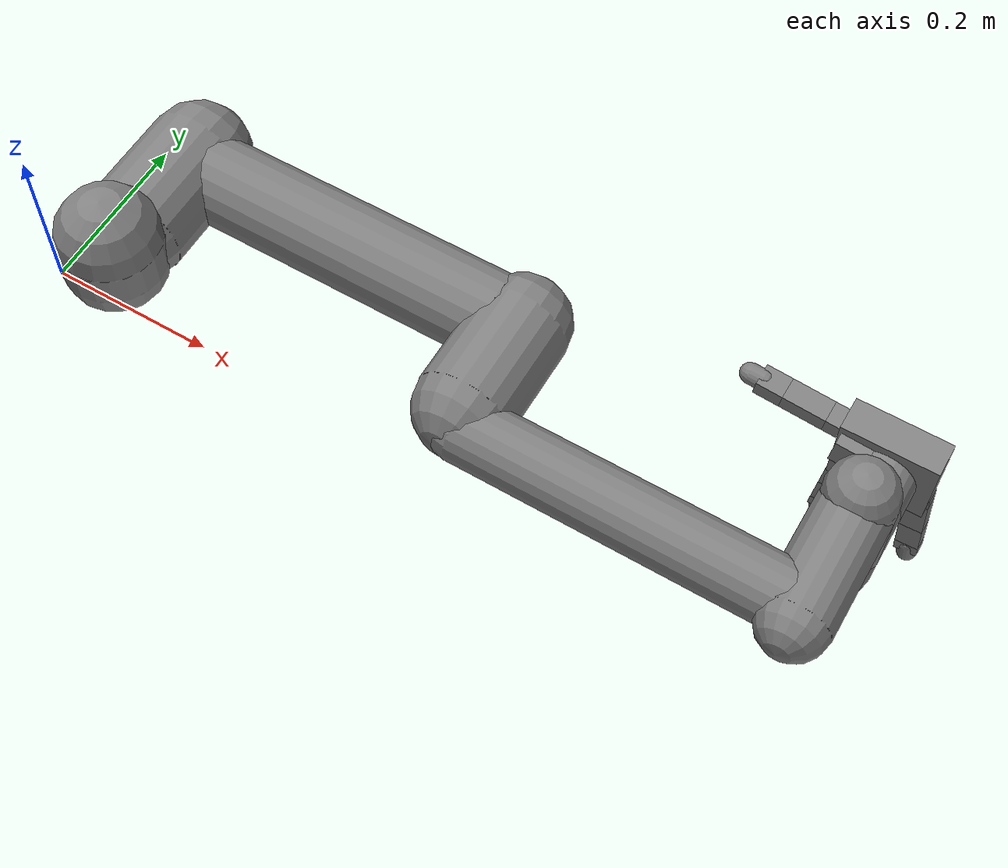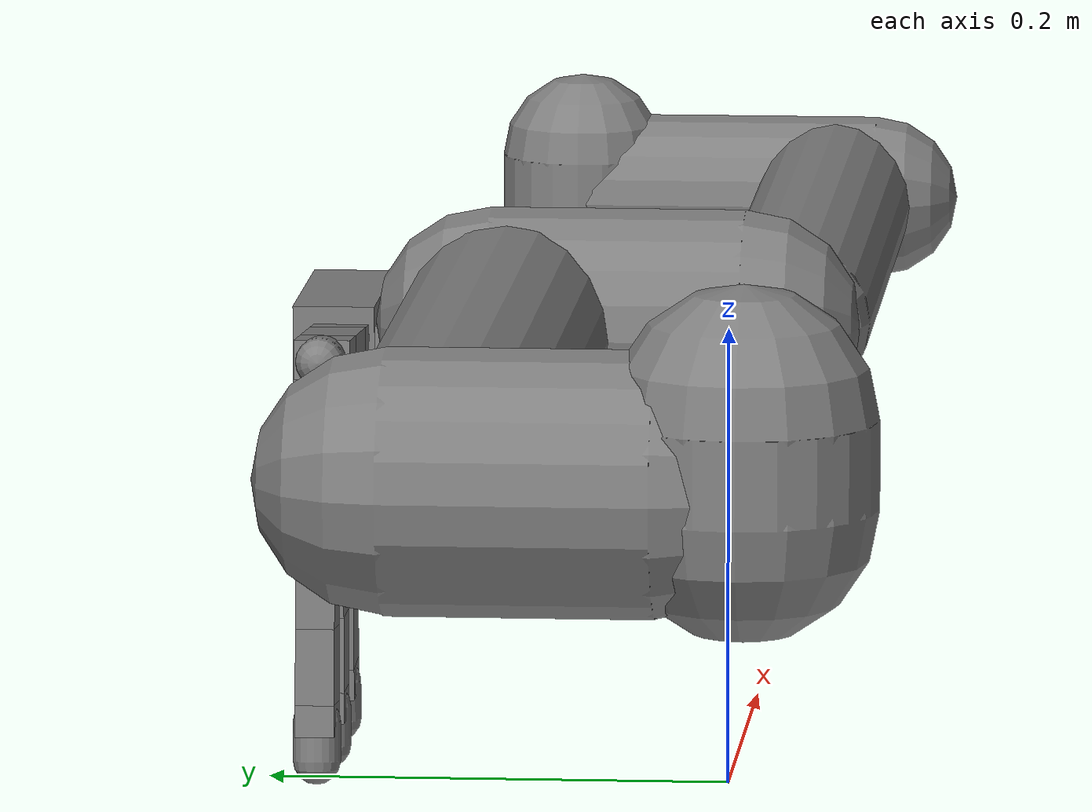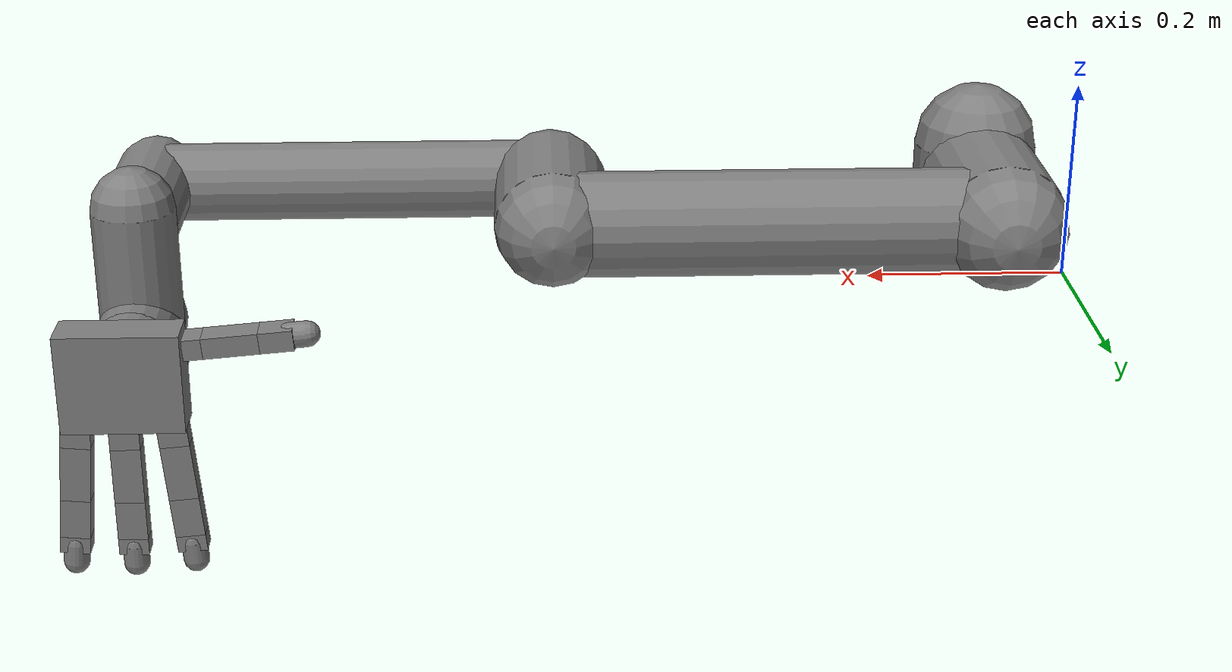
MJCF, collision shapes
<mujoco model="ur5e">
  <compiler angle="radian" meshdir="assets" autolimits="true"/>

  <option cone="elliptic" impratio="10"/>

  <default>
    <default class="ur5e">
      <joint axis="0 1 0" range="-6.28319 6.28319"/>
      <position ctrlrange="-6.28319 6.28319"/>

      <default class="visual_ur5e">
        <geom type="mesh" contype="0" conaffinity="0" group="2"/>
      </default>
      <default class="collision_ur5e">
        <geom type="capsule" group="3"/>
        <default class="eef_collision">
          <geom type="cylinder"/>
        </default>
      </default>
      <site size="0.001" rgba="0.5 0.5 0.5 0.3" group="4"/>

      <!-- Reference:
        https://www.universal-robots.com/articles/ur/robot-care-maintenance/max-joint-torques/ -->
      <default class="size3">
        <joint armature="0.1" damping="200"/>
        <position kp="3500" forcerange="-150 150"/>
        <default class="size3_limited">
          <joint range="-3.1415 3.1415"/>
          <position ctrlrange="-3.1415 3.1415"/>
        </default>
      </default>
      <default class="size1">
        <joint armature="0.1" damping="15"/>
        <position kp="3000" forcerange="-28 28"/>
      </default>
    </default>

    <!-- dex -->
    <default class="allegro_left">
      <joint axis="0 1 0" damping=".1"/>
      <position kp="1"/>
      <geom density="800"/>

      <default class="visual">
        <geom type="mesh" contype="0" conaffinity="0" group="2" material="black"/>
        <default class="palm_visual">
          <geom mesh="base_link"/>
        </default>
        <default class="base_visual">
          <geom mesh="link_0.0"/>
        </default>
        <default class="proximal_visual">
          <geom mesh="link_1.0"/>
        </default>
        <default class="medial_visual">
          <geom mesh="link_2.0"/>
        </default>
        <default class="distal_visual">
          <geom mesh="link_3.0"/>
        </default>
        <default class="fingertip_visual">
          <geom pos="0 0 0.0267" material="white" mesh="link_3.0_tip"/>
        </default>
        <default class="thumbtip_visual">
          <geom pos="0 0 0.0423" material="white" mesh="link_15.0_tip"/>
        </default>
      </default>

      <default class="collision">
        <geom group="3" type="box" mass="0"/>
        <default class="palm_collision">
          <geom size="0.0204 0.0565 0.0475" pos="-0.0093 0 -0.0475"/>
        </default>
        <default class="base_collision">
          <geom size="0.0098 0.01375 0.0082" pos="0 0 0.0082"/>
          <default class="thumb_base_collision">
            <geom size="0.0179 0.017 0.02275" pos="-0.0179 0.009 0.0145"/>
          </default>
        </default>
        <default class="proximal_collision">
          <geom size="0.0098 0.01375 0.027" pos="0 0 0.027"/>
          <default class="thumb_proximal_collision">
            <geom size="0.0098 0.01375 0.00885" pos="0 0 0.00885"/>
          </default>
        </default>
        <default class="medial_collision">
          <geom size="0.0098 0.01375 0.0192" pos="0 0 0.0192"/>
          <default class="thumb_medial_collision">
            <geom size="0.0098 0.01375 0.0257" pos="0 0 0.0257"/>
          </default>
        </default>
        <default class="distal_collision">
          <geom size="0.0098 0.01375 0.008" pos="0 0 0.008"/>
          <default class="thumb_distal_collision">
            <geom size="0.0098 0.01375 0.0157" pos="0 0 0.0157"/>
          </default>
        </default>
        <default class="fingertip_collision">
          <geom type="capsule" size="0.012 0.01" pos="0 0 0.019"/>
          <default class="thumbtip_collision">
            <geom type="capsule" size="0.012 0.008" pos="0 0 0.035"/>
          </default>
        </default>
      </default>

      <default class="base">
        <joint axis="0 0 1" range="-0.47 0.47"/>
        <position ctrlrange="-0.47 0.47"/>
      </default>
      <default class="proximal">
        <joint range="-0.196 1.61"/>
        <position ctrlrange="-0.196 1.61"/>
      </default>
      <default class="medial">
        <joint range="-0.174 1.709"/>
        <position ctrlrange="-0.174 1.709"/>
      </default>
      <default class="distal">
        <joint range="-0.227 1.618"/>
        <position ctrlrange="-0.227 1.618"/>
      </default>
      <default class="thumb_base">
        <joint axis="1 0 0" range="0.263 1.396"/>
        <position ctrlrange="0.263 1.396"/>
      </default>
      <default class="thumb_proximal">
        <joint axis="0 0 -1" range="-0.105 1.163"/>
        <position ctrlrange="-0.105 1.163"/>
      </default>
      <default class="thumb_medial">
        <joint range="-0.189 1.644"/>
        <position ctrlrange="-0.189 1.644"/>
      </default>
      <default class="thumb_distal">
        <joint range="-0.162 1.719"/>
        <position ctrlrange="-0.162 1.719"/>
      </default>
    </default>

  </default>

  <asset>
    <material name="black_ur5e" specular="0.5" shininess="0.25" rgba="0.033 0.033 0.033 1"/>
    <material name="jointgray" specular="0.5" shininess="0.25" rgba="0.278 0.278 0.278 1"/>
    <material name="linkgray" specular="0.5" shininess="0.25" rgba="0.82 0.82 0.82 1"/>
    <material name="urblue" specular="0.5" shininess="0.25" rgba="0.49 0.678 0.8 1"/>
    <!-- dex -->
    <material name="black" rgba="0.2 0.2 0.2 1"/>
    <material name="white" rgba="0.9 0.9 0.9 1"/>

    <mesh file="base_0.obj"/>
    <mesh file="base_1.obj"/>
    <mesh file="shoulder_0.obj"/>
    <mesh file="shoulder_1.obj"/>
    <mesh file="shoulder_2.obj"/>
    <mesh file="upperarm_0.obj"/>
    <mesh file="upperarm_1.obj"/>
    <mesh file="upperarm_2.obj"/>
    <mesh file="upperarm_3.obj"/>
    <mesh file="forearm_0.obj"/>
    <mesh file="forearm_1.obj"/>
    <mesh file="forearm_2.obj"/>
    <mesh file="forearm_3.obj"/>
    <mesh file="wrist1_0.obj"/>
    <mesh file="wrist1_1.obj"/>
    <mesh file="wrist1_2.obj"/>
    <mesh file="wrist2_0.obj"/>
    <mesh file="wrist2_1.obj"/>
    <mesh file="wrist2_2.obj"/>
    <mesh file="wrist3.obj"/>
    <!-- dex -->
    <mesh file="base_link_left.stl"/>
    <mesh file="link_0.0.stl"/>
    <mesh file="link_1.0.stl"/>
    <mesh file="link_2.0.stl"/>
    <mesh file="link_3.0.stl"/>
    <mesh file="link_3.0_tip.stl"/>
    <mesh file="link_12.0_left.stl"/>
    <mesh file="link_13.0.stl"/>
    <mesh file="link_14.0.stl"/>
    <mesh file="link_15.0.stl"/>
    <mesh file="link_15.0_tip.stl"/>
  </asset>

  <worldbody>
    <body name="base_ur5e" quat="0 0 0 0" childclass="ur5e" pos="0.1 0 -0.05" gravcomp="1">
      <inertial mass="4.0" pos="0 0 0" diaginertia="0.00443333156 0.00443333156 0.0072"/>
      <geom mesh="base_0" material="black_ur5e" class="visual_ur5e"/>
      <body name="shoulder_link" pos="0 0 0.163" gravcomp="1">
        <inertial mass="3.7" pos="0 0 0" diaginertia="0.0102675 0.0102675 0.00666"/>
        <joint name="shoulder_pan_joint" class="size3" axis="0 0 1"/>
        <geom mesh="shoulder_0" material="urblue" class="visual_ur5e"/>
        <geom mesh="shoulder_1" material="black_ur5e" class="visual_ur5e"/>
        <geom mesh="shoulder_2" material="jointgray" class="visual_ur5e"/>
        <geom class="collision_ur5e" size="0.06 0.02" pos="0 0 0.01"/>
        <body name="upper_arm_link" pos="0 0.138 0" quat="1 0 1 0" gravcomp="1">
          <inertial mass="8.393" pos="0 0 0.2125" diaginertia="0.133886 0.133886 0.0151074"/>
          <joint name="shoulder_lift_joint" class="size3"/>
          <geom mesh="upperarm_0" material="linkgray" class="visual_ur5e"/>
          <geom mesh="upperarm_1" material="black_ur5e" class="visual_ur5e"/>
          <geom mesh="upperarm_2" material="jointgray" class="visual_ur5e"/>
          <geom mesh="upperarm_3" material="urblue" class="visual_ur5e"/>
          <geom class="collision_ur5e" pos="0 -0.04 0" quat="1 1 0 0" size="0.06 0.06"/>
          <geom class="collision_ur5e" size="0.05 0.2" pos="0 0 0.2"/>
          <body name="forearm_link" pos="0 -0.131 0.425" gravcomp="1">
            <inertial mass="2.275" pos="0 0 0.196" diaginertia="0.0311796 0.0311796 0.004095"/>
            <joint name="elbow_joint" class="size3_limited"/>
            <geom mesh="forearm_0" material="urblue" class="visual_ur5e"/>
            <geom mesh="forearm_1" material="linkgray" class="visual_ur5e"/>
            <geom mesh="forearm_2" material="black_ur5e" class="visual_ur5e"/>
            <geom mesh="forearm_3" material="jointgray" class="visual_ur5e"/>
            <geom class="collision_ur5e" pos="0 0.08 0" quat="1 1 0 0" size="0.055 0.06"/>
            <geom class="collision_ur5e" size="0.038 0.19" pos="0 0 0.2"/>
            <body name="wrist_1_link" pos="0 0 0.392" quat="1 0 1 0" gravcomp="1">
              <inertial mass="1.219" pos="0 0.127 0" diaginertia="0.0025599 0.0025599 0.0021942"/>
              <joint name="wrist_1_joint" class="size1"/>
              <geom mesh="wrist1_0" material="black_ur5e" class="visual_ur5e"/>
              <geom mesh="wrist1_1" material="urblue" class="visual_ur5e"/>
              <geom mesh="wrist1_2" material="jointgray" class="visual_ur5e"/>
              <geom class="collision_ur5e" pos="0 0.05 0" quat="1 1 0 0" size="0.04 0.07"/>
              <body name="wrist_2_link" pos="0 0.127 0" gravcomp="1">
                <inertial mass="1.219" pos="0 0 0.1" diaginertia="0.0025599 0.0025599 0.0021942"/>
                <joint name="wrist_2_joint" axis="0 0 1" class="size1"/>
                <geom mesh="wrist2_0" material="black_ur5e" class="visual_ur5e"/>
                <geom mesh="wrist2_1" material="urblue" class="visual_ur5e"/>
                <geom mesh="wrist2_2" material="jointgray" class="visual_ur5e"/>
                <geom class="collision_ur5e" size="0.04 0.06" pos="0 0 0.04"/>
                <geom class="collision_ur5e" pos="0 0.02 0.1" quat="1 1 0 0" size="0.04 0.04"/>
                <body name="wrist_3_link" pos="0 0 0.1" gravcomp="1">
                  <inertial mass="0.1889" pos="0 0.0771683 0" quat="1 0 0 1"
                      diaginertia="0.000132134 9.90863e-05 9.90863e-05"/>
                  <joint name="wrist_3_joint" class="size1"/>
                  <geom material="linkgray" mesh="wrist3" class="visual_ur5e"/>
                  <geom class="eef_collision" pos="0 0.08 0" quat="1 1 0 0" size="0.04 0.02"/>
                  <site name="attachment_site" pos="0 0.1 0" quat="-1 1 0 0"/>

                  <!-- Dexterous right hand Allegro -->
                  <!-- quat="0 1 0 1" -->
                  <body name="palm" pos="0 0.13 0.045" quat="1 0 0 1" childclass="allegro_left" gravcomp="1">
                    <site name="tcp_site" type="box" pos="0.04 0 -0.02" size="0.01 0.02 0.01" rgba="1 0 0 0"/>
                    <body name="tcp_center" pos="0.04 0 -0.02"/>
                    <geom quat="1 -1 0 0" class="palm_visual" mesh="base_link_left"/>
                    <geom class="palm_collision"/>
                    <!-- Ring finger -->
                    <body name="rf_base" pos="0 0.0435 -0.001542" quat="0.999048 -0.0436194 0 0" gravcomp="1">
                      <joint name="rfj0" class="base"/>
                      <geom class="base_visual"/>
                      <geom class="base_collision"/>
                      <body name="rf_proximal" pos="0 0 0.0164" gravcomp="1">
                        <joint name="rfj1" class="proximal"/>
                        <geom class="proximal_visual"/>
                        <geom class="proximal_collision"/>
                        <body name="rf_medial" pos="0 0 0.054" gravcomp="1">
                          <joint name="rfj2" class="medial"/>
                          <geom class="medial_visual"/>
                          <geom class="medial_collision"/>
                          <body name="rf_distal" pos="0 0 0.0384" gravcomp="1">
                            <joint name="rfj3" class="distal"/>
                            <geom class="distal_visual"/>
                            <geom class="distal_collision"/>
                            <body name="rf_tip" gravcomp="1">
                              <geom class="fingertip_visual"/>
                              <geom class="fingertip_collision"/>
                            </body>
                          </body>
                        </body>
                      </body>
                    </body>
                    <!-- Middle finger -->
                    <body name="mf_base" pos="0 0 0.0007" gravcomp="1">
                      <joint name="mfj0" class="base"/>
                      <geom class="base_visual"/>
                      <geom class="base_collision"/>
                      <body name="mf_proximal" pos="0 0 0.0164" gravcomp="1">
                        <joint name="mfj1" class="proximal"/>
                        <geom class="proximal_visual"/>
                        <geom class="proximal_collision"/>
                        <body name="mf_medial" pos="0 0 0.054" gravcomp="1">
                          <joint name="mfj2" class="medial"/>
                          <geom class="medial_visual"/>
                          <geom class="medial_collision"/>
                          <body name="mf_distal" pos="0 0 0.0384" gravcomp="1">
                            <joint name="mfj3" class="distal"/>
                            <geom class="distal_visual"/>
                            <geom class="distal_collision"/>
                            <body name="mf_tip" gravcomp="1">
                              <geom class="fingertip_visual"/>
                              <geom class="fingertip_collision"/>
                            </body>
                          </body>
                        </body>
                      </body>
                    </body>
                    <!-- First finger -->
                    <body name="ff_base" pos="0 -0.0435 -0.001542" quat="0.999048 0.0436194 0 0" gravcomp="1">
                      <joint name="ffj0" class="base"/>
                      <geom class="base_visual"/>
                      <geom class="base_collision"/>
                      <body name="ff_proximal" pos="0 0 0.0164" gravcomp="1">
                        <joint name="ffj1" class="proximal"/>
                        <geom class="proximal_visual"/>
                        <geom class="proximal_collision"/>
                        <body name="ff_medial" pos="0 0 0.054" gravcomp="1">
                          <joint name="ffj2" class="medial"/>
                          <geom class="medial_visual"/>
                          <geom class="medial_collision"/>
                          <body name="ff_distal" pos="0 0 0.0384" gravcomp="1">
                            <joint name="ffj3" class="distal"/>
                            <geom class="distal_visual"/>
                            <geom class="distal_collision"/>
                            <body name="ff_tip" gravcomp="1">
                              <geom class="fingertip_visual"/>
                              <geom class="fingertip_collision"/>
                            </body>
                          </body>
                        </body>
                      </body>
                    </body>
                    <!-- Thumb -->
                    <body name="th_base" pos="-0.0182 -0.019333 -0.045987" quat="0.477714 0.521334 -0.521334 0.477714" gravcomp="1">
                      <joint name="thj0" class="thumb_base"/>
                      <geom quat="0 1 0 0" class="visual" mesh="link_12.0_left"/>
                      <geom class="thumb_base_collision"/>
                      <body name="th_proximal" pos="-0.027 -0.005 0.0399" gravcomp="1">
                        <joint name="thj1" class="thumb_proximal"/>
                        <geom class="visual" mesh="link_13.0"/>
                        <geom class="thumb_proximal_collision"/>
                        <body name="th_medial" pos="0 0 0.0177" gravcomp="1">
                          <joint name="thj2" class="thumb_medial"/>
                          <geom class="visual" mesh="link_14.0"/>
                          <geom class="thumb_medial_collision"/>
                          <body name="th_distal" pos="0 0 0.0514" gravcomp="1">
                            <joint name="thj3" class="thumb_distal"/>
                            <geom class="visual" mesh="link_15.0"/>
                            <geom class="thumb_distal_collision"/>
                            <body name="th_tip" gravcomp="1">
                              <geom class="thumbtip_visual"/>
                              <geom class="thumbtip_collision"/>
                            </body>
                          </body>
                        </body>
                      </body>
                    </body>
                  </body>

                </body>
              </body>
            </body>
          </body>
        </body>
      </body>
    </body>

  </worldbody>

  <!-- dex -->
  <contact>
    <exclude body1="palm" body2="ff_base"/>
    <exclude body1="palm" body2="mf_base"/>
    <exclude body1="palm" body2="rf_base"/>
    <exclude body1="palm" body2="th_base"/>
    <exclude body1="palm" body2="th_proximal"/>
  </contact>

</mujoco>
